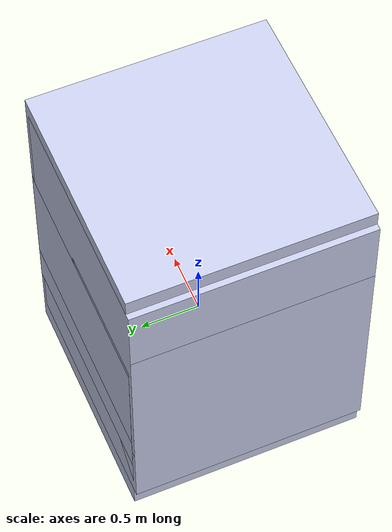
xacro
<?xml version="1.0"?>

<robot name="robot_arm"  xmlns:xacro="http://ros.org/wiki/xacro">
  <link name="world"/>
  <link name="arm_base">
    <inertial>
      <origin
        xyz="7.7128E-09 -0.063005 -3.01969999961422E-08"
        rpy="0 0 0" />
      <mass
        value="1.6004" />
      <inertia
        ixx="0.00552196561445819"
        ixy="7.9550614501301E-10"
        ixz="-1.34378458924839E-09"
        iyy="0.00352397447953875"
        iyz="-1.10071809773382E-08"
        izz="0.00553739792746489" />
    </inertial>
    <visual>
      <origin
        xyz="0 0 0"
        rpy="0 0 0" />
      <geometry>
        <box size = "2 2 2" />
      </geometry>
      <material
        name="">
        <color
          rgba="0.79216 0.81961 0.93333 1" />
      </material>
    </visual>
    <collision>
      <origin
        xyz="0 0 0"
        rpy="0 0 0" />
      <geometry>
        <box size = "2 2 2" />
      </geometry>
    </collision>
</link>

<link
    name="bicep">
    <inertial>
      <origin
        xyz="0.12821 3.5589E-06 0.052492"
        rpy="0 0 0" />
      <mass
        value="1.1198" />
      <inertia
        ixx="0.0012474"
        ixy="-5.4004E-07"
        ixz="-0.0013148"
        iyy="0.0072923"
        iyz="-1.8586E-07"
        izz="0.0068178" />
    </inertial>
    <visual>
      <origin
        xyz="0 0 0"
        rpy="0 -1.5708 0" />
      <geometry>
        <box size = "2 2 2" />
      </geometry>
      <material
        name="">
        <color
          rgba="0.79216 0.81961 0.93333 1" />
      </material>
    </visual>
    <collision>
      <origin
        xyz="0 0 0"
        rpy="0 -1.5708 0" />
      <geometry>
        <box size = "2 2 2" />
      </geometry>
    </collision>
  </link>

  <link
    name="bottom_wrist">
    <inertial>
      <origin
        xyz="-9.1053E-08 -0.069257 -1.86629999995759E-07"
        rpy="0 0 0" />
      <mass
        value="0.27721" />
      <inertia
        ixx="0.00104290750143942"
        ixy="4.37155302268076E-09"
        ixz="-2.45049603914627E-09"
        iyy="0.000380518373895034"
        iyz="-7.56009835172156E-09"
        izz="0.00106006525067445" />
    </inertial>
    <visual>
      <origin
        xyz="0 0 0.13522"
        rpy="3.14 0 1.5708" />
      <geometry>
        <box size = "2 2 2" />
      </geometry>
      <material
        name="">
        <color
          rgba="0.79216 0.81961 0.93333 1" />
      </material>
    </visual>
    <collision>
      <origin
        xyz="0 0 0.13522"
        rpy="3.14 0 1.5708" />
      <geometry>
        <box size = "2 2 2" />
      </geometry>
    </collision>
  </link>

 <link
    name="elbow">
    <inertial>
      <origin
        xyz="-0.11109 1.1476E-08 0.046469"
        rpy="0 0 0" />
      <mass
        value="0.84845" />
      <inertia
        ixx="0.00079656"
        ixy="-7.8011E-10"
        ixz="0.00053616"
        iyy="0.003576"
        iyz="4.6326E-10"
        izz="0.0033698" />
    </inertial>
    <visual>
      <origin
        xyz="0.0 0.05163 0.20994"
        rpy="0 -1.5708 0" />
      <geometry>
        <box size = "2 2 2" />
      </geometry>
      <material
        name="">
        <color
          rgba="0.79216 0.81961 0.93333 1" />
      </material>
    </visual>
    <collision>
      <origin
        xyz="0.0 0.05163 0.20994"
        rpy="0 -1.5708 0" />
      <geometry>
        <box size = "2 2 2" />
      </geometry>
    </collision>
  </link>

<link
    name="top_wrist">
    <inertial>
      <origin
        xyz="-9.1053E-08 -0.069257 -1.86629999995759E-07"
        rpy="0 0 0" />
      <mass
        value="0.27721" />
      <inertia
        ixx="0.00104290750143942"
        ixy="4.37155302268076E-09"
        ixz="-2.45049603914627E-09"
        iyy="0.000380518373895034"
        iyz="-7.56009835172156E-09"
        izz="0.00106006525067445" />
    </inertial>
    <visual>
      <origin
        xyz="0 0 0.13522"
        rpy="3.14 0 1.5708" />
      <geometry>
        <box size = "2 2 2" />
      </geometry>
      <material
        name="">
        <color
          rgba="0.79216 0.81961 0.93333 1" />
      </material>
    </visual>
    <collision>
      <origin
        xyz="0 0 0.13522"
        rpy="3.14 0 1.5708" />
      <geometry>
        <box size = "2 2 2" />
      </geometry>
    </collision>
  </link>
<joint name="arm_base_joint" type="continuous">
  <axis xyz="0 0 1"/>
  <parent link="world"/>
  <child link="arm_base"/>
  <origin rpy="0 0 0" xyz="0.0 0.0 0.1"/>
</joint>

<joint name="shoulder_joint" type="continuous">
  <axis xyz="0 1 0"/>
  <parent link="arm_base"/>
  <child link="bicep"/>
  <origin rpy="0 0 1.5708" xyz="-0.05166 0.0 0.20271"/>
</joint>

<joint name="bottom_wrist_joint" type="continuous">
  <axis xyz="0 1 0"/>
  <parent link="bicep"/>
  <child link="bottom_wrist"/>
  <origin rpy="0 0 0" xyz="0.0 -0.05194 0.269"/>
</joint>

<joint name="elbow_joint" type="continuous">
  <axis xyz="0 0 1"/>
  <parent link="bottom_wrist"/>
  <child link="elbow"/>
  <origin rpy="0 0 0" xyz="0.0 0 0.13522"/>
</joint>

<joint name="top_wrist_joint" type="continuous">
  <axis xyz="0 1 0"/>
  <parent link="elbow"/>
  <child link="top_wrist"/>
  <origin rpy="0 0 0" xyz="0.0 0 0.20994"/>
</joint>
<transmission name="arm_base_trans" type="SimpleTransmission">
  <type>transmission_interface/SimpleTransmission</type>
  <actuator name="arm_base_motor">
   <hardwareInterface>hardware_interface/PositionJointInterface</hardwareInterface>
   <mechanicalReduction>1</mechanicalReduction>
  </actuator>
  <joint name="arm_base_joint">
   <hardwareInterface>hardware_interface/PositionJointInterface</hardwareInterface>
  </joint>
</transmission>

<transmission name="shoulder_trans" type="SimpleTransmission">
  <type>transmission_interface/SimpleTransmission</type>
  <actuator name="shoulder_motor">
   <hardwareInterface>hardware_interface/PositionJointInterface</hardwareInterface>
   <mechanicalReduction>1</mechanicalReduction>
  </actuator>
  <joint name="shoulder_joint">
   <hardwareInterface>hardware_interface/PositionJointInterface</hardwareInterface>
  </joint>
</transmission>

<transmission name="bottom_wrist_trans" type="SimpleTransmission">
  <type>transmission_interface/SimpleTransmission</type>
  <actuator name="bottom_wrist_motor">
   <hardwareInterface>hardware_interface/PositionJointInterface</hardwareInterface>
   <mechanicalReduction>1</mechanicalReduction>
  </actuator>
  <joint name="bottom_wrist_joint">
   <hardwareInterface>hardware_interface/PositionJointInterface</hardwareInterface>
  </joint>
</transmission>

<transmission name="elbow_trans" type="SimpleTransmission">
  <type>transmission_interface/SimpleTransmission</type>
  <actuator name="elbow_motor">
   <hardwareInterface>hardware_interface/PositionJointInterface</hardwareInterface>
   <mechanicalReduction>1</mechanicalReduction>
  </actuator>
  <joint name="elbow_joint">
   <hardwareInterface>hardware_interface/PositionJointInterface</hardwareInterface>
  </joint>
</transmission>

<transmission name="top_wrist_trans" type="SimpleTransmission">
  <type>transmission_interface/SimpleTransmission</type>
  <actuator name="top_wrist_motor">
   <hardwareInterface>hardware_interface/PositionJointInterface</hardwareInterface>
   <mechanicalReduction>1</mechanicalReduction>
  </actuator>
  <joint name="top_wrist_joint">
   <hardwareInterface>hardware_interface/PositionJointInterface</hardwareInterface>
  </joint>
</transmission>

<gazebo>
    <plugin name="gazebo_ros_control" filename="libgazebo_ros_control.so">
      <robotNamespace>/</robotNamespace>
      <controlPeriod>0.001</controlPeriod>
      <legacyModeNS>false</legacyModeNS>
    </plugin>
  </gazebo>
  <gazebo>
    <plugin name="joint_state_publisher" filename="libgazebo_ros_joint_state_publisher.so">
      <jointName>arm_base_joint, shoulder_joint, bottom_wrist_joint, elbow_joint, bottom_wrist_joint</jointName>
    </plugin>
  </gazebo>

</robot>
